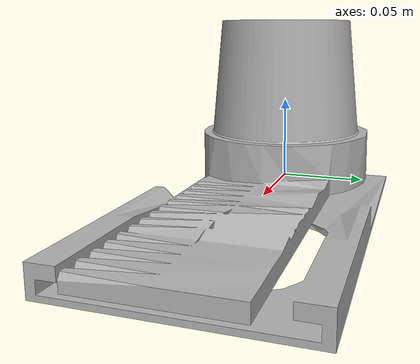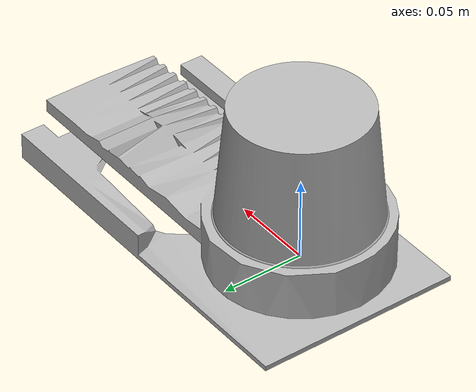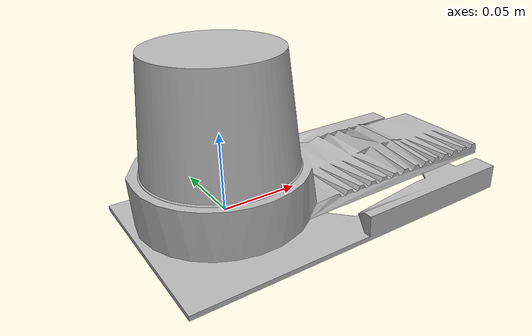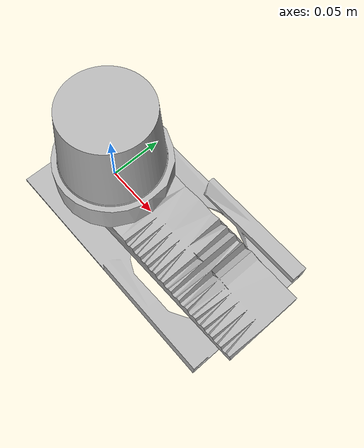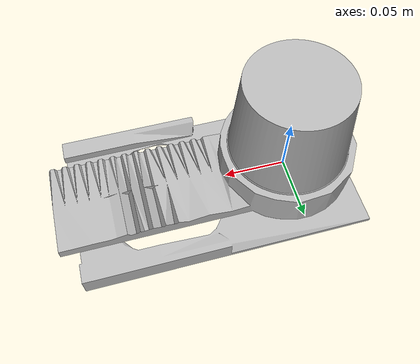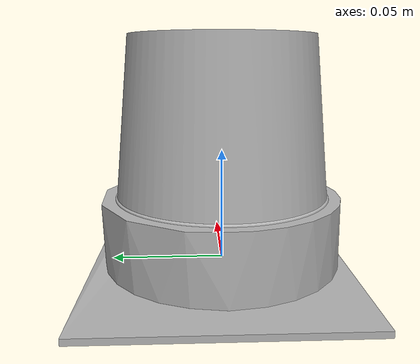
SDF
<?xml version="1.0" ?>
<sdf version="1.6">
	<model name="cup_dispenser">
		<link name="cup0">
			<self_collide>true</self_collide>
			<pose frame="">0.00029561021442630047 -7.602297566101374e-17 0.06839256472917847 0.0 -0.0 0.0</pose>
			<inertial>
				<pose frame="">0.0 0.0 0.0 0 0 0</pose>
				<mass>0.08214627826938747</mass>
				<inertia>
					<ixx>0.0005046702202513742</ixx>
					<ixy>-3.239162410517693e-19</ixy>
					<ixz>-1.6607957262995632e-06</ixz>
					<iyy>0.0005046773986366227</iyy>
					<iyz>-4.2410519540680985e-18</iyz>
					<izz>0.00013953757232128126</izz>
				</inertia>
			</inertial>
			<collision name="cup0_collision">
				<geometry>
					<mesh>
						<uri>model://cup_dispenser/meshes/CAD/cup0.stl</uri>
						<scale>0.001 0.001 0.001</scale>
					</mesh>
				</geometry>
			</collision>
			<visual name="cup0_visual">
				<geometry>
					<mesh>
						<uri>model://cup_dispenser/meshes/CAD/cup0.stl</uri>
						<scale>0.001 0.001 0.001</scale>
					</mesh>
				</geometry>
			</visual>
		</link>
		<link name="slider">
			<self_collide>true</self_collide>
			<pose frame="">0.10263520935743614 0.00015071828572864378 -0.013000000000000001 0.0 -0.0 0.0</pose>
			<inertial>
				<pose frame="">0.0 0.0 0.0 0 0 0</pose>
				<mass>0.8848920904733893</mass>
				<inertia>
					<ixx>0.0008165027449085713</ixx>
					<ixy>-2.4868995751603506e-18</ixy>
					<ixz>-0.00020745672560600905</ixz>
					<iyy>0.008683945506434584</iyy>
					<iyz>-4.4408920985006264e-20</iyz>
					<izz>0.009262550798731204</izz>
				</inertia>
			</inertial>
			<collision name="slider_collision">
				<geometry>
					<mesh>
						<uri>model://cup_dispenser/meshes/CAD/slider.stl</uri>
						<scale>0.001 0.001 0.001</scale>
					</mesh>
				</geometry>
			</collision>
			<visual name="slider_visual">
				<geometry>
					<mesh>
						<uri>model://cup_dispenser/meshes/CAD/slider.stl</uri>
						<scale>0.001 0.001 0.001</scale>
					</mesh>
				</geometry>
			</visual>
		</link>
		<link name="base">
			<self_collide>true</self_collide>
			<kinematic>true</kinematic>
			<pose frame="">0.07013926713802335 3.3535679372552075e-18 -0.008434170822049952 0.0 -0.0 0.0</pose>
			<inertial>
				<pose frame="">0.0 0.0 0.0 0 0 0</pose>
				<mass>0.6621145272123756</mass>
				<inertia>
					<ixx>0.0014817305794035676</ixx>
					<ixy>3.552713678800501e-19</ixy>
					<ixz>0.0002796516289495807</ixz>
					<iyy>0.006637094529742791</iyy>
					<iyz>0.0</iyz>
					<izz>0.007992313536830482</izz>
				</inertia>
			</inertial>
			<collision name="base_collision">
				<geometry>
					<mesh>
						<uri>model://cup_dispenser/meshes/CAD/base.stl</uri>
						<scale>0.001 0.001 0.001</scale>
					</mesh>
				</geometry>
			</collision>
			<visual name="base_visual">
				<geometry>
					<mesh>
						<uri>model://cup_dispenser/meshes/CAD/base.stl</uri>
						<scale>0.001 0.001 0.001</scale>
					</mesh>
				</geometry>
			</visual>
		</link>
		<joint name="joint_cup0" type="prismatic">
			<parent>slider</parent>
			<child>cup0</child>
			<pose frame="">5.3464177529605195e-17 8.751655466785423e-17 -0.03839256472917847 0 0 0</pose>
			<axis>
				<xyz>0.0 0.0 -1.0</xyz>
				<limit>
					<lower>0.0</lower>
					<upper>0.35</upper>
				</limit>
				<use_parent_model_frame>0</use_parent_model_frame>
			</axis>
		</joint>
		<joint name="slider_joint" type="prismatic">
			<parent>base</parent>
			<child>slider</child>
			<pose frame="">0.07236479064256386 -0.00015071828572864378 0.0030000000000000005 0 0 0</pose>
			<axis>
				<xyz>1.0 0.0 0.0</xyz>
				<limit>
					<lower>-0.0</lower>
					<upper>0.12</upper>
				</limit>
				<use_parent_model_frame>0</use_parent_model_frame>
			</axis>
		</joint>

		<gazebo>
			<plugin name="gazebo_ros_control" filename="libgazebo_ros_control.so">
				<robotNamespace>/CupDispenser</robotNamespace>
			</plugin>
		</gazebo>
	</model>
</sdf>
